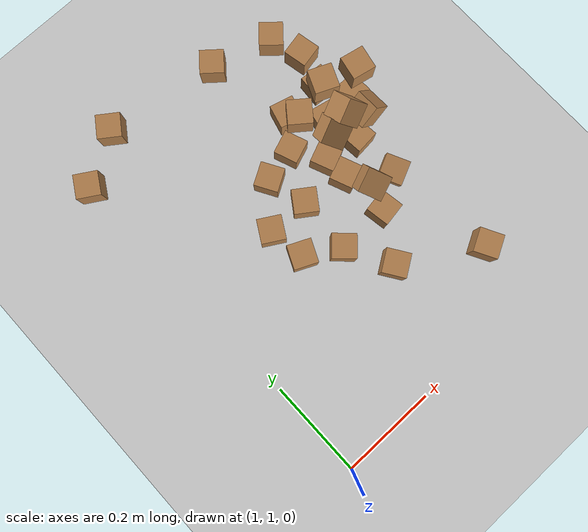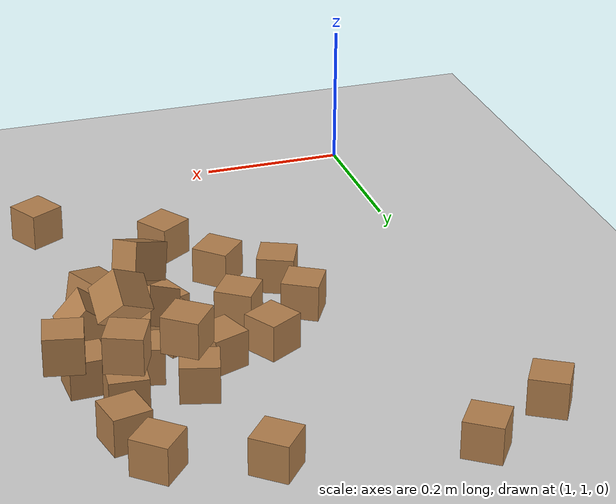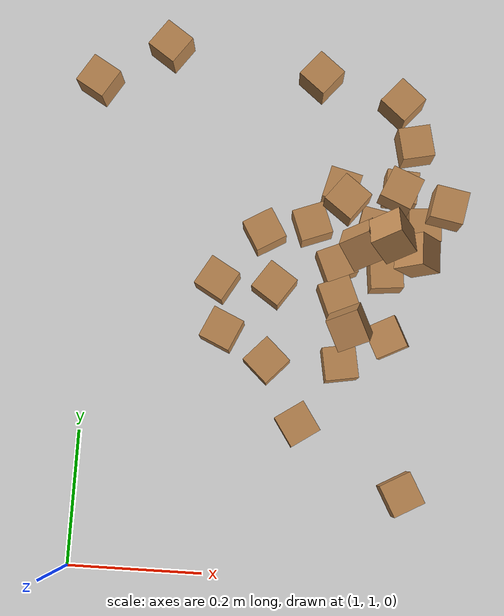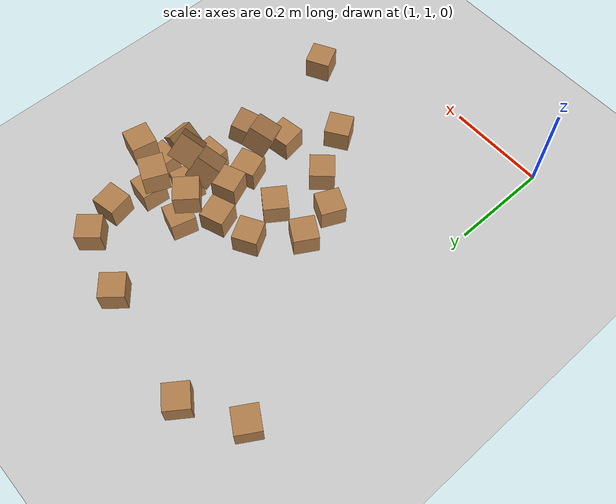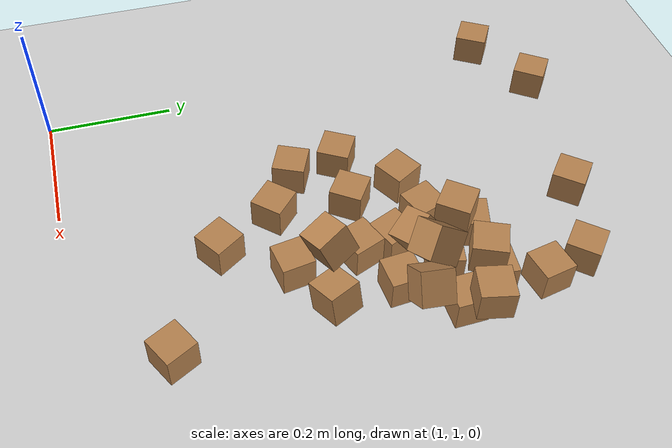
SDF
<sdf version="1.6">
 <world name="default">
  <model name="ground_plane">
   <static>1</static>
   <link name="link">
    <collision name="collision">
     <geometry><plane><normal>0 0 1</normal><size>100 100</size></plane></geometry>
     <surface>
      <contact><collide_bitmask>65535</collide_bitmask></contact>
      <friction><ode><mu>100</mu><mu2>50</mu2></ode></friction>
     </surface>
    </collision>
    <visual name="visual">
     <cast_shadows>0</cast_shadows>
     <geometry><plane><normal>0 0 1</normal><size>100 100</size></plane></geometry>
     <material>
      <script><uri>file://media/materials/scripts/gazebo.material</uri><name>Gazebo/Grey</name></script>
     </material>
    </visual>
   </link>
  </model>
  <model name="cube_0844_05p0cm">
   <link name="link">
    <pose>0 0 0.025 0 -0 0</pose>
    <inertial>
     <mass>0.0565</mass>
     <inertia>
      <ixx>2.35417e-05</ixx>
      <ixy>0</ixy>
      <ixz>0</ixz>
      <iyy>2.35417e-05</iyy>
      <iyz>0</iyz>
      <izz>2.35417e-05</izz>
     </inertia>
    </inertial>
    <collision name="collision">
     <geometry><box><size>0.05 0.05 0.05</size></box></geometry>
     <surface>
      <contact>
       <poissons_ratio>0.347</poissons_ratio>
       <elastic_modulus>8.8e+09</elastic_modulus>
       <ode><kp>100000</kp><kd>1</kd><max_vel>1</max_vel><min_depth>0.001</min_depth></ode>
      </contact>
      <friction>
       <torsional>
        <coefficient>1</coefficient>
        <use_patch_radius>0</use_patch_radius>
        <surface_radius>0.05</surface_radius>
       </torsional>
      </friction>
     </surface>
    </collision>
    <visual name="visual">
     <geometry><box><size>0.05 0.05 0.05</size></box></geometry>
     <material>
      <script><uri>file://media/materials/scripts/gazebo.material</uri><name>Gazebo/Wood</name></script>
     </material>
    </visual>
   </link>
   <pose>1.45237 1.46277 -0.001003 1.4e-05 -2.9e-05 0.090534</pose>
  </model>
  <model name="cube_0493_05p0cm">
   <link name="link">
    <pose>0 0 0.025 0 -0 0</pose>
    <inertial>
     <mass>0.0565</mass>
     <inertia>
      <ixx>2.35417e-05</ixx>
      <ixy>0</ixy>
      <ixz>0</ixz>
      <iyy>2.35417e-05</iyy>
      <iyz>0</iyz>
      <izz>2.35417e-05</izz>
     </inertia>
    </inertial>
    <collision name="collision">
     <geometry><box><size>0.05 0.05 0.05</size></box></geometry>
     <surface>
      <contact>
       <poissons_ratio>0.347</poissons_ratio>
       <elastic_modulus>8.8e+09</elastic_modulus>
       <ode><kp>100000</kp><kd>1</kd><max_vel>1</max_vel><min_depth>0.001</min_depth></ode>
      </contact>
      <friction>
       <torsional>
        <coefficient>1</coefficient>
        <use_patch_radius>0</use_patch_radius>
        <surface_radius>0.05</surface_radius>
       </torsional>
      </friction>
     </surface>
    </collision>
    <visual name="visual">
     <geometry><box><size>0.05 0.05 0.05</size></box></geometry>
     <material>
      <script><uri>file://media/materials/scripts/gazebo.material</uri><name>Gazebo/Wood</name></script>
     </material>
    </visual>
   </link>
   <pose>1.46921 1.34229 0.028546 -1.57068 -0.204429 0.449199</pose>
  </model>
  <model name="cube_0588_05p0cm">
   <link name="link">
    <pose>0 0 0.025 0 -0 0</pose>
    <inertial>
     <mass>0.0565</mass>
     <inertia>
      <ixx>2.35417e-05</ixx>
      <ixy>0</ixy>
      <ixz>0</ixz>
      <iyy>2.35417e-05</iyy>
      <iyz>0</iyz>
      <izz>2.35417e-05</izz>
     </inertia>
    </inertial>
    <collision name="collision">
     <geometry><box><size>0.05 0.05 0.05</size></box></geometry>
     <surface>
      <contact>
       <poissons_ratio>0.347</poissons_ratio>
       <elastic_modulus>8.8e+09</elastic_modulus>
       <ode><kp>100000</kp><kd>1</kd><max_vel>1</max_vel><min_depth>0.001</min_depth></ode>
      </contact>
      <friction>
       <torsional>
        <coefficient>1</coefficient>
        <use_patch_radius>0</use_patch_radius>
        <surface_radius>0.05</surface_radius>
       </torsional>
      </friction>
     </surface>
    </collision>
    <visual name="visual">
     <geometry><box><size>0.05 0.05 0.05</size></box></geometry>
     <material>
      <script><uri>file://media/materials/scripts/gazebo.material</uri><name>Gazebo/Wood</name></script>
     </material>
    </visual>
   </link>
   <pose>1.43353 1.53398 -0.000736 -0.000105 -0.010819 -0.211148</pose>
  </model>
  <model name="cube_0846_05p0cm">
   <link name="link">
    <pose>0 0 0.025 0 -0 0</pose>
    <inertial>
     <mass>0.0565</mass>
     <inertia>
      <ixx>2.35417e-05</ixx>
      <ixy>0</ixy>
      <ixz>0</ixz>
      <iyy>2.35417e-05</iyy>
      <iyz>0</iyz>
      <izz>2.35417e-05</izz>
     </inertia>
    </inertial>
    <collision name="collision">
     <geometry><box><size>0.05 0.05 0.05</size></box></geometry>
     <surface>
      <contact>
       <poissons_ratio>0.347</poissons_ratio>
       <elastic_modulus>8.8e+09</elastic_modulus>
       <ode><kp>100000</kp><kd>1</kd><max_vel>1</max_vel><min_depth>0.001</min_depth></ode>
      </contact>
      <friction>
       <torsional>
        <coefficient>1</coefficient>
        <use_patch_radius>0</use_patch_radius>
        <surface_radius>0.05</surface_radius>
       </torsional>
      </friction>
     </surface>
    </collision>
    <visual name="visual">
     <geometry><box><size>0.05 0.05 0.05</size></box></geometry>
     <material>
      <script><uri>file://media/materials/scripts/gazebo.material</uri><name>Gazebo/Wood</name></script>
     </material>
    </visual>
   </link>
   <pose>1.44932 1.75408 0.023999 1.5708 -0 0.853521</pose>
  </model>
  <model name="cube_0293_05p0cm">
   <link name="link">
    <pose>0 0 0.025 0 -0 0</pose>
    <inertial>
     <mass>0.0565</mass>
     <inertia>
      <ixx>2.35417e-05</ixx>
      <ixy>0</ixy>
      <ixz>0</ixz>
      <iyy>2.35417e-05</iyy>
      <iyz>0</iyz>
      <izz>2.35417e-05</izz>
     </inertia>
    </inertial>
    <collision name="collision">
     <geometry><box><size>0.05 0.05 0.05</size></box></geometry>
     <surface>
      <contact>
       <poissons_ratio>0.347</poissons_ratio>
       <elastic_modulus>8.8e+09</elastic_modulus>
       <ode><kp>100000</kp><kd>1</kd><max_vel>1</max_vel><min_depth>0.001</min_depth></ode>
      </contact>
      <friction>
       <torsional>
        <coefficient>1</coefficient>
        <use_patch_radius>0</use_patch_radius>
        <surface_radius>0.05</surface_radius>
       </torsional>
      </friction>
     </surface>
    </collision>
    <visual name="visual">
     <geometry><box><size>0.05 0.05 0.05</size></box></geometry>
     <material>
      <script><uri>file://media/materials/scripts/gazebo.material</uri><name>Gazebo/Wood</name></script>
     </material>
    </visual>
   </link>
   <pose>1.47107 1.59783 -0.001002 2.8e-05 -1.5e-05 -0.078631</pose>
  </model>
  <model name="cube_0204_05p0cm">
   <link name="link">
    <pose>0 0 0.025 0 -0 0</pose>
    <inertial>
     <mass>0.0565</mass>
     <inertia>
      <ixx>2.35417e-05</ixx>
      <ixy>0</ixy>
      <ixz>0</ixz>
      <iyy>2.35417e-05</iyy>
      <iyz>0</iyz>
      <izz>2.35417e-05</izz>
     </inertia>
    </inertial>
    <collision name="collision">
     <geometry><box><size>0.05 0.05 0.05</size></box></geometry>
     <surface>
      <contact>
       <poissons_ratio>0.347</poissons_ratio>
       <elastic_modulus>8.8e+09</elastic_modulus>
       <ode><kp>100000</kp><kd>1</kd><max_vel>1</max_vel><min_depth>0.001</min_depth></ode>
      </contact>
      <friction>
       <torsional>
        <coefficient>1</coefficient>
        <use_patch_radius>0</use_patch_radius>
        <surface_radius>0.05</surface_radius>
       </torsional>
      </friction>
     </surface>
    </collision>
    <visual name="visual">
     <geometry><box><size>0.05 0.05 0.05</size></box></geometry>
     <material>
      <script><uri>file://media/materials/scripts/gazebo.material</uri><name>Gazebo/Wood</name></script>
     </material>
    </visual>
   </link>
   <pose>1.50842 1.53937 -0.001002 -4.7e-05 3e-06 0.033762</pose>
  </model>
  <model name="cube_0254_05p0cm">
   <link name="link">
    <pose>0 0 0.025 0 -0 0</pose>
    <inertial>
     <mass>0.0565</mass>
     <inertia>
      <ixx>2.35417e-05</ixx>
      <ixy>0</ixy>
      <ixz>0</ixz>
      <iyy>2.35417e-05</iyy>
      <iyz>0</iyz>
      <izz>2.35417e-05</izz>
     </inertia>
    </inertial>
    <collision name="collision">
     <geometry><box><size>0.05 0.05 0.05</size></box></geometry>
     <surface>
      <contact>
       <poissons_ratio>0.347</poissons_ratio>
       <elastic_modulus>8.8e+09</elastic_modulus>
       <ode><kp>100000</kp><kd>1</kd><max_vel>1</max_vel><min_depth>0.001</min_depth></ode>
      </contact>
      <friction>
       <torsional>
        <coefficient>1</coefficient>
        <use_patch_radius>0</use_patch_radius>
        <surface_radius>0.05</surface_radius>
       </torsional>
      </friction>
     </surface>
    </collision>
    <visual name="visual">
     <geometry><box><size>0.05 0.05 0.05</size></box></geometry>
     <material>
      <script><uri>file://media/materials/scripts/gazebo.material</uri><name>Gazebo/Wood</name></script>
     </material>
    </visual>
   </link>
   <pose>1.27817 1.31897 -0.001001 0 0 -0.755856</pose>
  </model>
  <model name="cube_0472_05p0cm">
   <link name="link">
    <pose>0 0 0.025 0 -0 0</pose>
    <inertial>
     <mass>0.0565</mass>
     <inertia>
      <ixx>2.35417e-05</ixx>
      <ixy>0</ixy>
      <ixz>0</ixz>
      <iyy>2.35417e-05</iyy>
      <iyz>0</iyz>
      <izz>2.35417e-05</izz>
     </inertia>
    </inertial>
    <collision name="collision">
     <geometry><box><size>0.05 0.05 0.05</size></box></geometry>
     <surface>
      <contact>
       <poissons_ratio>0.347</poissons_ratio>
       <elastic_modulus>8.8e+09</elastic_modulus>
       <ode><kp>100000</kp><kd>1</kd><max_vel>1</max_vel><min_depth>0.001</min_depth></ode>
      </contact>
      <friction>
       <torsional>
        <coefficient>1</coefficient>
        <use_patch_radius>0</use_patch_radius>
        <surface_radius>0.05</surface_radius>
       </torsional>
      </friction>
     </surface>
    </collision>
    <visual name="visual">
     <geometry><box><size>0.05 0.05 0.05</size></box></geometry>
     <material>
      <script><uri>file://media/materials/scripts/gazebo.material</uri><name>Gazebo/Wood</name></script>
     </material>
    </visual>
   </link>
   <pose>1.20866 1.46051 0.023999 -2.10009 -1.57079 3.14159</pose>
  </model>
  <model name="cube_0798_05p0cm">
   <link name="link">
    <pose>0 0 0.025 0 -0 0</pose>
    <inertial>
     <mass>0.0565</mass>
     <inertia>
      <ixx>2.35417e-05</ixx>
      <ixy>0</ixy>
      <ixz>0</ixz>
      <iyy>2.35417e-05</iyy>
      <iyz>0</iyz>
      <izz>2.35417e-05</izz>
     </inertia>
    </inertial>
    <collision name="collision">
     <geometry><box><size>0.05 0.05 0.05</size></box></geometry>
     <surface>
      <contact>
       <poissons_ratio>0.347</poissons_ratio>
       <elastic_modulus>8.8e+09</elastic_modulus>
       <ode><kp>100000</kp><kd>1</kd><max_vel>1</max_vel><min_depth>0.001</min_depth></ode>
      </contact>
      <friction>
       <torsional>
        <coefficient>1</coefficient>
        <use_patch_radius>0</use_patch_radius>
        <surface_radius>0.05</surface_radius>
       </torsional>
      </friction>
     </surface>
    </collision>
    <visual name="visual">
     <geometry><box><size>0.05 0.05 0.05</size></box></geometry>
     <material>
      <script><uri>file://media/materials/scripts/gazebo.material</uri><name>Gazebo/Wood</name></script>
     </material>
    </visual>
   </link>
   <pose>1.4003 1.48438 0.024642 1.86455 -1.55377 -1.46869</pose>
  </model>
  <model name="cube_0718_05p0cm">
   <link name="link">
    <pose>0 0 0.025 0 -0 0</pose>
    <inertial>
     <mass>0.0565</mass>
     <inertia>
      <ixx>2.35417e-05</ixx>
      <ixy>0</ixy>
      <ixz>0</ixz>
      <iyy>2.35417e-05</iyy>
      <iyz>0</iyz>
      <izz>2.35417e-05</izz>
     </inertia>
    </inertial>
    <collision name="collision">
     <geometry><box><size>0.05 0.05 0.05</size></box></geometry>
     <surface>
      <contact>
       <poissons_ratio>0.347</poissons_ratio>
       <elastic_modulus>8.8e+09</elastic_modulus>
       <ode><kp>100000</kp><kd>1</kd><max_vel>1</max_vel><min_depth>0.001</min_depth></ode>
      </contact>
      <friction>
       <torsional>
        <coefficient>1</coefficient>
        <use_patch_radius>0</use_patch_radius>
        <surface_radius>0.05</surface_radius>
       </torsional>
      </friction>
     </surface>
    </collision>
    <visual name="visual">
     <geometry><box><size>0.05 0.05 0.05</size></box></geometry>
     <material>
      <script><uri>file://media/materials/scripts/gazebo.material</uri><name>Gazebo/Wood</name></script>
     </material>
    </visual>
   </link>
   <pose>1.49637 1.51333 0.058275 1.3794 0.873597 -0.157128</pose>
  </model>
  <model name="cube_0536_05p0cm">
   <link name="link">
    <pose>0 0 0.025 0 -0 0</pose>
    <inertial>
     <mass>0.0565</mass>
     <inertia>
      <ixx>2.35417e-05</ixx>
      <ixy>0</ixy>
      <ixz>0</ixz>
      <iyy>2.35417e-05</iyy>
      <iyz>0</iyz>
      <izz>2.35417e-05</izz>
     </inertia>
    </inertial>
    <collision name="collision">
     <geometry><box><size>0.05 0.05 0.05</size></box></geometry>
     <surface>
      <contact>
       <poissons_ratio>0.347</poissons_ratio>
       <elastic_modulus>8.8e+09</elastic_modulus>
       <ode><kp>100000</kp><kd>1</kd><max_vel>1</max_vel><min_depth>0.001</min_depth></ode>
      </contact>
      <friction>
       <torsional>
        <coefficient>1</coefficient>
        <use_patch_radius>0</use_patch_radius>
        <surface_radius>0.05</surface_radius>
       </torsional>
      </friction>
     </surface>
    </collision>
    <visual name="visual">
     <geometry><box><size>0.05 0.05 0.05</size></box></geometry>
     <material>
      <script><uri>file://media/materials/scripts/gazebo.material</uri><name>Gazebo/Wood</name></script>
     </material>
    </visual>
   </link>
   <pose>1.42658 1.48005 0.057531 -1.05224 -0.4378 0.388262</pose>
  </model>
  <model name="cube_0382_05p0cm">
   <link name="link">
    <pose>0 0 0.025 0 -0 0</pose>
    <inertial>
     <mass>0.0565</mass>
     <inertia>
      <ixx>2.35417e-05</ixx>
      <ixy>0</ixy>
      <ixz>0</ixz>
      <iyy>2.35417e-05</iyy>
      <iyz>0</iyz>
      <izz>2.35417e-05</izz>
     </inertia>
    </inertial>
    <collision name="collision">
     <geometry><box><size>0.05 0.05 0.05</size></box></geometry>
     <surface>
      <contact>
       <poissons_ratio>0.347</poissons_ratio>
       <elastic_modulus>8.8e+09</elastic_modulus>
       <ode><kp>100000</kp><kd>1</kd><max_vel>1</max_vel><min_depth>0.001</min_depth></ode>
      </contact>
      <friction>
       <torsional>
        <coefficient>1</coefficient>
        <use_patch_radius>0</use_patch_radius>
        <surface_radius>0.05</surface_radius>
       </torsional>
      </friction>
     </surface>
    </collision>
    <visual name="visual">
     <geometry><box><size>0.05 0.05 0.05</size></box></geometry>
     <material>
      <script><uri>file://media/materials/scripts/gazebo.material</uri><name>Gazebo/Wood</name></script>
     </material>
    </visual>
   </link>
   <pose>1.51272 1.56536 0.072996 0.09979 1.57076 -0.101741</pose>
  </model>
  <model name="cube_0802_05p0cm">
   <link name="link">
    <pose>0 0 0.025 0 -0 0</pose>
    <inertial>
     <mass>0.0565</mass>
     <inertia>
      <ixx>2.35417e-05</ixx>
      <ixy>0</ixy>
      <ixz>0</ixz>
      <iyy>2.35417e-05</iyy>
      <iyz>0</iyz>
      <izz>2.35417e-05</izz>
     </inertia>
    </inertial>
    <collision name="collision">
     <geometry><box><size>0.05 0.05 0.05</size></box></geometry>
     <surface>
      <contact>
       <poissons_ratio>0.347</poissons_ratio>
       <elastic_modulus>8.8e+09</elastic_modulus>
       <ode><kp>100000</kp><kd>1</kd><max_vel>1</max_vel><min_depth>0.001</min_depth></ode>
      </contact>
      <friction>
       <torsional>
        <coefficient>1</coefficient>
        <use_patch_radius>0</use_patch_radius>
        <surface_radius>0.05</surface_radius>
       </torsional>
      </friction>
     </surface>
    </collision>
    <visual name="visual">
     <geometry><box><size>0.05 0.05 0.05</size></box></geometry>
     <material>
      <script><uri>file://media/materials/scripts/gazebo.material</uri><name>Gazebo/Wood</name></script>
     </material>
    </visual>
   </link>
   <pose>1.40468 1.43225 0.023998 -1.5708 -2.4e-05 1.95528</pose>
  </model>
  <model name="cube_0918_05p0cm">
   <link name="link">
    <pose>0 0 0.025 0 -0 0</pose>
    <inertial>
     <mass>0.0565</mass>
     <inertia>
      <ixx>2.35417e-05</ixx>
      <ixy>0</ixy>
      <ixz>0</ixz>
      <iyy>2.35417e-05</iyy>
      <iyz>0</iyz>
      <izz>2.35417e-05</izz>
     </inertia>
    </inertial>
    <collision name="collision">
     <geometry><box><size>0.05 0.05 0.05</size></box></geometry>
     <surface>
      <contact>
       <poissons_ratio>0.347</poissons_ratio>
       <elastic_modulus>8.8e+09</elastic_modulus>
       <ode><kp>100000</kp><kd>1</kd><max_vel>1</max_vel><min_depth>0.001</min_depth></ode>
      </contact>
      <friction>
       <torsional>
        <coefficient>1</coefficient>
        <use_patch_radius>0</use_patch_radius>
        <surface_radius>0.05</surface_radius>
       </torsional>
      </friction>
     </surface>
    </collision>
    <visual name="visual">
     <geometry><box><size>0.05 0.05 0.05</size></box></geometry>
     <material>
      <script><uri>file://media/materials/scripts/gazebo.material</uri><name>Gazebo/Wood</name></script>
     </material>
    </visual>
   </link>
   <pose>1.23064 1.35202 0.023999 2.71151 -1.57079 3.14159</pose>
  </model>
  <model name="cube_0690_05p0cm">
   <link name="link">
    <pose>0 0 0.025 0 -0 0</pose>
    <inertial>
     <mass>0.0565</mass>
     <inertia>
      <ixx>2.35417e-05</ixx>
      <ixy>0</ixy>
      <ixz>0</ixz>
      <iyy>2.35417e-05</iyy>
      <iyz>0</iyz>
      <izz>2.35417e-05</izz>
     </inertia>
    </inertial>
    <collision name="collision">
     <geometry><box><size>0.05 0.05 0.05</size></box></geometry>
     <surface>
      <contact>
       <poissons_ratio>0.347</poissons_ratio>
       <elastic_modulus>8.8e+09</elastic_modulus>
       <ode><kp>100000</kp><kd>1</kd><max_vel>1</max_vel><min_depth>0.001</min_depth></ode>
      </contact>
      <friction>
       <torsional>
        <coefficient>1</coefficient>
        <use_patch_radius>0</use_patch_radius>
        <surface_radius>0.05</surface_radius>
       </torsional>
      </friction>
     </surface>
    </collision>
    <visual name="visual">
     <geometry><box><size>0.05 0.05 0.05</size></box></geometry>
     <material>
      <script><uri>file://media/materials/scripts/gazebo.material</uri><name>Gazebo/Wood</name></script>
     </material>
    </visual>
   </link>
   <pose>1.37931 1.5938 0.048998 3.14158 -6e-06 2.88156</pose>
  </model>
  <model name="cube_0035_05p0cm">
   <link name="link">
    <pose>0 0 0.025 0 -0 0</pose>
    <inertial>
     <mass>0.0565</mass>
     <inertia>
      <ixx>2.35417e-05</ixx>
      <ixy>0</ixy>
      <ixz>0</ixz>
      <iyy>2.35417e-05</iyy>
      <iyz>0</iyz>
      <izz>2.35417e-05</izz>
     </inertia>
    </inertial>
    <collision name="collision">
     <geometry><box><size>0.05 0.05 0.05</size></box></geometry>
     <surface>
      <contact>
       <poissons_ratio>0.347</poissons_ratio>
       <elastic_modulus>8.8e+09</elastic_modulus>
       <ode><kp>100000</kp><kd>1</kd><max_vel>1</max_vel><min_depth>0.001</min_depth></ode>
      </contact>
      <friction>
       <torsional>
        <coefficient>1</coefficient>
        <use_patch_radius>0</use_patch_radius>
        <surface_radius>0.05</surface_radius>
       </torsional>
      </friction>
     </surface>
    </collision>
    <visual name="visual">
     <geometry><box><size>0.05 0.05 0.05</size></box></geometry>
     <material>
      <script><uri>file://media/materials/scripts/gazebo.material</uri><name>Gazebo/Wood</name></script>
     </material>
    </visual>
   </link>
   <pose>1.251 1.54028 0.023999 -1.04381 -1.57079 3.14159</pose>
  </model>
  <model name="cube_0933_05p0cm">
   <link name="link">
    <pose>0 0 0.025 0 -0 0</pose>
    <inertial>
     <mass>0.0565</mass>
     <inertia>
      <ixx>2.35417e-05</ixx>
      <ixy>0</ixy>
      <ixz>0</ixz>
      <iyy>2.35417e-05</iyy>
      <iyz>0</iyz>
      <izz>2.35417e-05</izz>
     </inertia>
    </inertial>
    <collision name="collision">
     <geometry><box><size>0.05 0.05 0.05</size></box></geometry>
     <surface>
      <contact>
       <poissons_ratio>0.347</poissons_ratio>
       <elastic_modulus>8.8e+09</elastic_modulus>
       <ode><kp>100000</kp><kd>1</kd><max_vel>1</max_vel><min_depth>0.001</min_depth></ode>
      </contact>
      <friction>
       <torsional>
        <coefficient>1</coefficient>
        <use_patch_radius>0</use_patch_radius>
        <surface_radius>0.05</surface_radius>
       </torsional>
      </friction>
     </surface>
    </collision>
    <visual name="visual">
     <geometry><box><size>0.05 0.05 0.05</size></box></geometry>
     <material>
      <script><uri>file://media/materials/scripts/gazebo.material</uri><name>Gazebo/Wood</name></script>
     </material>
    </visual>
   </link>
   <pose>1.28345 1.43607 -0.001001 0 -0 2.53282</pose>
  </model>
  <model name="cube_0940_05p0cm">
   <link name="link">
    <pose>0 0 0.025 0 -0 0</pose>
    <inertial>
     <mass>0.0565</mass>
     <inertia>
      <ixx>2.35417e-05</ixx>
      <ixy>0</ixy>
      <ixz>0</ixz>
      <iyy>2.35417e-05</iyy>
      <iyz>0</iyz>
      <izz>2.35417e-05</izz>
     </inertia>
    </inertial>
    <collision name="collision">
     <geometry><box><size>0.05 0.05 0.05</size></box></geometry>
     <surface>
      <contact>
       <poissons_ratio>0.347</poissons_ratio>
       <elastic_modulus>8.8e+09</elastic_modulus>
       <ode><kp>100000</kp><kd>1</kd><max_vel>1</max_vel><min_depth>0.001</min_depth></ode>
      </contact>
      <friction>
       <torsional>
        <coefficient>1</coefficient>
        <use_patch_radius>0</use_patch_radius>
        <surface_radius>0.05</surface_radius>
       </torsional>
      </friction>
     </surface>
    </collision>
    <visual name="visual">
     <geometry><box><size>0.05 0.05 0.05</size></box></geometry>
     <material>
      <script><uri>file://media/materials/scripts/gazebo.material</uri><name>Gazebo/Wood</name></script>
     </material>
    </visual>
   </link>
   <pose>0.989057 1.7499 0.048999 -3.14159 -0 2.59516</pose>
  </model>
  <model name="cube_0556_05p0cm">
   <link name="link">
    <pose>0 0 0.025 0 -0 0</pose>
    <inertial>
     <mass>0.0565</mass>
     <inertia>
      <ixx>2.35417e-05</ixx>
      <ixy>0</ixy>
      <ixz>0</ixz>
      <iyy>2.35417e-05</iyy>
      <iyz>0</iyz>
      <izz>2.35417e-05</izz>
     </inertia>
    </inertial>
    <collision name="collision">
     <geometry><box><size>0.05 0.05 0.05</size></box></geometry>
     <surface>
      <contact>
       <poissons_ratio>0.347</poissons_ratio>
       <elastic_modulus>8.8e+09</elastic_modulus>
       <ode><kp>100000</kp><kd>1</kd><max_vel>1</max_vel><min_depth>0.001</min_depth></ode>
      </contact>
      <friction>
       <torsional>
        <coefficient>1</coefficient>
        <use_patch_radius>0</use_patch_radius>
        <surface_radius>0.05</surface_radius>
       </torsional>
      </friction>
     </surface>
    </collision>
    <visual name="visual">
     <geometry><box><size>0.05 0.05 0.05</size></box></geometry>
     <material>
      <script><uri>file://media/materials/scripts/gazebo.material</uri><name>Gazebo/Wood</name></script>
     </material>
    </visual>
   </link>
   <pose>1.44271 1.59232 0.072996 1.27781 1.57075 0.8685</pose>
  </model>
  <model name="cube_0202_05p0cm">
   <link name="link">
    <pose>0 0 0.025 0 -0 0</pose>
    <inertial>
     <mass>0.0565</mass>
     <inertia>
      <ixx>2.35417e-05</ixx>
      <ixy>0</ixy>
      <ixz>0</ixz>
      <iyy>2.35417e-05</iyy>
      <iyz>0</iyz>
      <izz>2.35417e-05</izz>
     </inertia>
    </inertial>
    <collision name="collision">
     <geometry><box><size>0.05 0.05 0.05</size></box></geometry>
     <surface>
      <contact>
       <poissons_ratio>0.347</poissons_ratio>
       <elastic_modulus>8.8e+09</elastic_modulus>
       <ode><kp>100000</kp><kd>1</kd><max_vel>1</max_vel><min_depth>0.001</min_depth></ode>
      </contact>
      <friction>
       <torsional>
        <coefficient>1</coefficient>
        <use_patch_radius>0</use_patch_radius>
        <surface_radius>0.05</surface_radius>
       </torsional>
      </friction>
     </surface>
    </collision>
    <visual name="visual">
     <geometry><box><size>0.05 0.05 0.05</size></box></geometry>
     <material>
      <script><uri>file://media/materials/scripts/gazebo.material</uri><name>Gazebo/Wood</name></script>
     </material>
    </visual>
   </link>
   <pose>1.33637 1.53485 0.048998 -3.14159 -3.3e-05 -2.78778</pose>
  </model>
  <model name="cube_0890_05p0cm">
   <link name="link">
    <pose>0 0 0.025 0 -0 0</pose>
    <inertial>
     <mass>0.0565</mass>
     <inertia>
      <ixx>2.35417e-05</ixx>
      <ixy>0</ixy>
      <ixz>0</ixz>
      <iyy>2.35417e-05</iyy>
      <iyz>0</iyz>
      <izz>2.35417e-05</izz>
     </inertia>
    </inertial>
    <collision name="collision">
     <geometry><box><size>0.05 0.05 0.05</size></box></geometry>
     <surface>
      <contact>
       <poissons_ratio>0.347</poissons_ratio>
       <elastic_modulus>8.8e+09</elastic_modulus>
       <ode><kp>100000</kp><kd>1</kd><max_vel>1</max_vel><min_depth>0.001</min_depth></ode>
      </contact>
      <friction>
       <torsional>
        <coefficient>1</coefficient>
        <use_patch_radius>0</use_patch_radius>
        <surface_radius>0.05</surface_radius>
       </torsional>
      </friction>
     </surface>
    </collision>
    <visual name="visual">
     <geometry><box><size>0.05 0.05 0.05</size></box></geometry>
     <material>
      <script><uri>file://media/materials/scripts/gazebo.material</uri><name>Gazebo/Wood</name></script>
     </material>
    </visual>
   </link>
   <pose>1.37076 1.54463 0.073006 1.45884 -1.57038 2.59419</pose>
  </model>
  <model name="cube_0094_05p0cm">
   <link name="link">
    <pose>0 0 0.025 0 -0 0</pose>
    <inertial>
     <mass>0.0565</mass>
     <inertia>
      <ixx>2.35417e-05</ixx>
      <ixy>0</ixy>
      <ixz>0</ixz>
      <iyy>2.35417e-05</iyy>
      <iyz>0</iyz>
      <izz>2.35417e-05</izz>
     </inertia>
    </inertial>
    <collision name="collision">
     <geometry><box><size>0.05 0.05 0.05</size></box></geometry>
     <surface>
      <contact>
       <poissons_ratio>0.347</poissons_ratio>
       <elastic_modulus>8.8e+09</elastic_modulus>
       <ode><kp>100000</kp><kd>1</kd><max_vel>1</max_vel><min_depth>0.001</min_depth></ode>
      </contact>
      <friction>
       <torsional>
        <coefficient>1</coefficient>
        <use_patch_radius>0</use_patch_radius>
        <surface_radius>0.05</surface_radius>
       </torsional>
      </friction>
     </surface>
    </collision>
    <visual name="visual">
     <geometry><box><size>0.05 0.05 0.05</size></box></geometry>
     <material>
      <script><uri>file://media/materials/scripts/gazebo.material</uri><name>Gazebo/Wood</name></script>
     </material>
    </visual>
   </link>
   <pose>1.38864 1.32104 -0.001002 -0 -1.7e-05 -2.97921</pose>
  </model>
  <model name="cube_0800_05p0cm">
   <link name="link">
    <pose>0 0 0.025 0 -0 0</pose>
    <inertial>
     <mass>0.0565</mass>
     <inertia>
      <ixx>2.35417e-05</ixx>
      <ixy>0</ixy>
      <ixz>0</ixz>
      <iyy>2.35417e-05</iyy>
      <iyz>0</iyz>
      <izz>2.35417e-05</izz>
     </inertia>
    </inertial>
    <collision name="collision">
     <geometry><box><size>0.05 0.05 0.05</size></box></geometry>
     <surface>
      <contact>
       <poissons_ratio>0.347</poissons_ratio>
       <elastic_modulus>8.8e+09</elastic_modulus>
       <ode><kp>100000</kp><kd>1</kd><max_vel>1</max_vel><min_depth>0.001</min_depth></ode>
      </contact>
      <friction>
       <torsional>
        <coefficient>1</coefficient>
        <use_patch_radius>0</use_patch_radius>
        <surface_radius>0.05</surface_radius>
       </torsional>
      </friction>
     </surface>
    </collision>
    <visual name="visual">
     <geometry><box><size>0.05 0.05 0.05</size></box></geometry>
     <material>
      <script><uri>file://media/materials/scripts/gazebo.material</uri><name>Gazebo/Wood</name></script>
     </material>
    </visual>
   </link>
   <pose>1.44021 1.51966 0.114118 -2.5829 -0.619796 -1.52397</pose>
  </model>
  <model name="cube_0439_05p0cm">
   <link name="link">
    <pose>0 0 0.025 0 -0 0</pose>
    <inertial>
     <mass>0.0565</mass>
     <inertia>
      <ixx>2.35417e-05</ixx>
      <ixy>0</ixy>
      <ixz>0</ixz>
      <iyy>2.35417e-05</iyy>
      <iyz>0</iyz>
      <izz>2.35417e-05</izz>
     </inertia>
    </inertial>
    <collision name="collision">
     <geometry><box><size>0.05 0.05 0.05</size></box></geometry>
     <surface>
      <contact>
       <poissons_ratio>0.347</poissons_ratio>
       <elastic_modulus>8.8e+09</elastic_modulus>
       <ode><kp>100000</kp><kd>1</kd><max_vel>1</max_vel><min_depth>0.001</min_depth></ode>
      </contact>
      <friction>
       <torsional>
        <coefficient>1</coefficient>
        <use_patch_radius>0</use_patch_radius>
        <surface_radius>0.05</surface_radius>
       </torsional>
      </friction>
     </surface>
    </collision>
    <visual name="visual">
     <geometry><box><size>0.05 0.05 0.05</size></box></geometry>
     <material>
      <script><uri>file://media/materials/scripts/gazebo.material</uri><name>Gazebo/Wood</name></script>
     </material>
    </visual>
   </link>
   <pose>1.33937 1.7751 -0.001001 0 -0 -0.697875</pose>
  </model>
  <model name="cube_0525_05p0cm">
   <link name="link">
    <pose>0 0 0.025 0 -0 0</pose>
    <inertial>
     <mass>0.0565</mass>
     <inertia>
      <ixx>2.35417e-05</ixx>
      <ixy>0</ixy>
      <ixz>0</ixz>
      <iyy>2.35417e-05</iyy>
      <iyz>0</iyz>
      <izz>2.35417e-05</izz>
     </inertia>
    </inertial>
    <collision name="collision">
     <geometry><box><size>0.05 0.05 0.05</size></box></geometry>
     <surface>
      <contact>
       <poissons_ratio>0.347</poissons_ratio>
       <elastic_modulus>8.8e+09</elastic_modulus>
       <ode><kp>100000</kp><kd>1</kd><max_vel>1</max_vel><min_depth>0.001</min_depth></ode>
      </contact>
      <friction>
       <torsional>
        <coefficient>1</coefficient>
        <use_patch_radius>0</use_patch_radius>
        <surface_radius>0.05</surface_radius>
       </torsional>
      </friction>
     </surface>
    </collision>
    <visual name="visual">
     <geometry><box><size>0.05 0.05 0.05</size></box></geometry>
     <material>
      <script><uri>file://media/materials/scripts/gazebo.material</uri><name>Gazebo/Wood</name></script>
     </material>
    </visual>
   </link>
   <pose>1.34326 1.20584 0.023999 0.984493 1.57079 3.14159</pose>
  </model>
  <model name="cube_0279_05p0cm">
   <link name="link">
    <pose>0 0 0.025 0 -0 0</pose>
    <inertial>
     <mass>0.0565</mass>
     <inertia>
      <ixx>2.35417e-05</ixx>
      <ixy>0</ixy>
      <ixz>0</ixz>
      <iyy>2.35417e-05</iyy>
      <iyz>0</iyz>
      <izz>2.35417e-05</izz>
     </inertia>
    </inertial>
    <collision name="collision">
     <geometry><box><size>0.05 0.05 0.05</size></box></geometry>
     <surface>
      <contact>
       <poissons_ratio>0.347</poissons_ratio>
       <elastic_modulus>8.8e+09</elastic_modulus>
       <ode><kp>100000</kp><kd>1</kd><max_vel>1</max_vel><min_depth>0.001</min_depth></ode>
      </contact>
      <friction>
       <torsional>
        <coefficient>1</coefficient>
        <use_patch_radius>0</use_patch_radius>
        <surface_radius>0.05</surface_radius>
       </torsional>
      </friction>
     </surface>
    </collision>
    <visual name="visual">
     <geometry><box><size>0.05 0.05 0.05</size></box></geometry>
     <material>
      <script><uri>file://media/materials/scripts/gazebo.material</uri><name>Gazebo/Wood</name></script>
     </material>
    </visual>
   </link>
   <pose>1.49981 1.11102 0.023999 -1.5708 0 0.494403</pose>
  </model>
  <model name="cube_0412_05p0cm">
   <link name="link">
    <pose>0 0 0.025 0 -0 0</pose>
    <inertial>
     <mass>0.0565</mass>
     <inertia>
      <ixx>2.35417e-05</ixx>
      <ixy>0</ixy>
      <ixz>0</ixz>
      <iyy>2.35417e-05</iyy>
      <iyz>0</iyz>
      <izz>2.35417e-05</izz>
     </inertia>
    </inertial>
    <collision name="collision">
     <geometry><box><size>0.05 0.05 0.05</size></box></geometry>
     <surface>
      <contact>
       <poissons_ratio>0.347</poissons_ratio>
       <elastic_modulus>8.8e+09</elastic_modulus>
       <ode><kp>100000</kp><kd>1</kd><max_vel>1</max_vel><min_depth>0.001</min_depth></ode>
      </contact>
      <friction>
       <torsional>
        <coefficient>1</coefficient>
        <use_patch_radius>0</use_patch_radius>
        <surface_radius>0.05</surface_radius>
       </torsional>
      </friction>
     </surface>
    </collision>
    <visual name="visual">
     <geometry><box><size>0.05 0.05 0.05</size></box></geometry>
     <material>
      <script><uri>file://media/materials/scripts/gazebo.material</uri><name>Gazebo/Wood</name></script>
     </material>
    </visual>
   </link>
   <pose>1.48586 1.69463 0.023999 1.5708 -0 0.201298</pose>
  </model>
  <model name="cube_0513_05p0cm">
   <link name="link">
    <pose>0 0 0.025 0 -0 0</pose>
    <inertial>
     <mass>0.0565</mass>
     <inertia>
      <ixx>2.35417e-05</ixx>
      <ixy>0</ixy>
      <ixz>0</ixz>
      <iyy>2.35417e-05</iyy>
      <iyz>0</iyz>
      <izz>2.35417e-05</izz>
     </inertia>
    </inertial>
    <collision name="collision">
     <geometry><box><size>0.05 0.05 0.05</size></box></geometry>
     <surface>
      <contact>
       <poissons_ratio>0.347</poissons_ratio>
       <elastic_modulus>8.8e+09</elastic_modulus>
       <ode><kp>100000</kp><kd>1</kd><max_vel>1</max_vel><min_depth>0.001</min_depth></ode>
      </contact>
      <friction>
       <torsional>
        <coefficient>1</coefficient>
        <use_patch_radius>0</use_patch_radius>
        <surface_radius>0.05</surface_radius>
       </torsional>
      </friction>
     </surface>
    </collision>
    <visual name="visual">
     <geometry><box><size>0.05 0.05 0.05</size></box></geometry>
     <material>
      <script><uri>file://media/materials/scripts/gazebo.material</uri><name>Gazebo/Wood</name></script>
     </material>
    </visual>
   </link>
   <pose>1.3873 1.39334 0.079077 -2.30964 -1.15449 -1.9839</pose>
  </model>
  <model name="cube_0989_05p0cm">
   <link name="link">
    <pose>0 0 0.025 0 -0 0</pose>
    <inertial>
     <mass>0.0565</mass>
     <inertia>
      <ixx>2.35417e-05</ixx>
      <ixy>0</ixy>
      <ixz>0</ixz>
      <iyy>2.35417e-05</iyy>
      <iyz>0</iyz>
      <izz>2.35417e-05</izz>
     </inertia>
    </inertial>
    <collision name="collision">
     <geometry><box><size>0.05 0.05 0.05</size></box></geometry>
     <surface>
      <contact>
       <poissons_ratio>0.347</poissons_ratio>
       <elastic_modulus>8.8e+09</elastic_modulus>
       <ode><kp>100000</kp><kd>1</kd><max_vel>1</max_vel><min_depth>0.001</min_depth></ode>
      </contact>
      <friction>
       <torsional>
        <coefficient>1</coefficient>
        <use_patch_radius>0</use_patch_radius>
        <surface_radius>0.05</surface_radius>
       </torsional>
      </friction>
     </surface>
    </collision>
    <visual name="visual">
     <geometry><box><size>0.05 0.05 0.05</size></box></geometry>
     <material>
      <script><uri>file://media/materials/scripts/gazebo.material</uri><name>Gazebo/Wood</name></script>
     </material>
    </visual>
   </link>
   <pose>1.09813 1.81357 -0.001001 -0 -0 -0.618517</pose>
  </model>
 </world>
</sdf>
